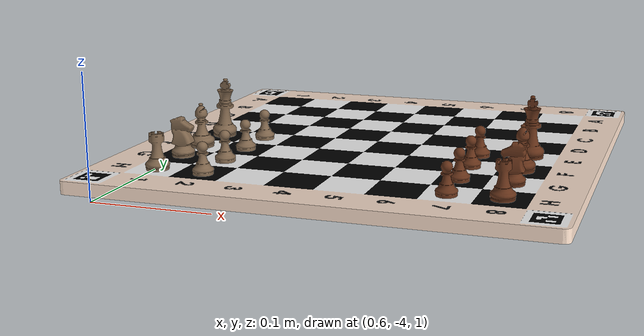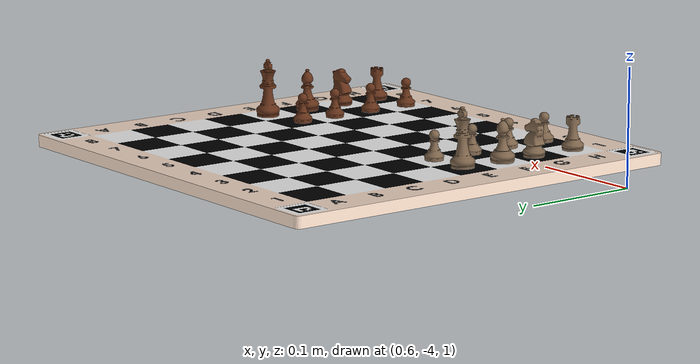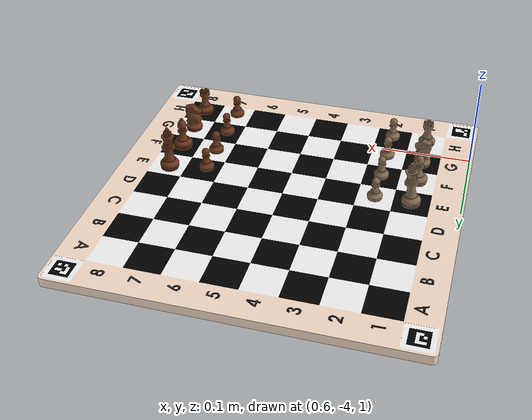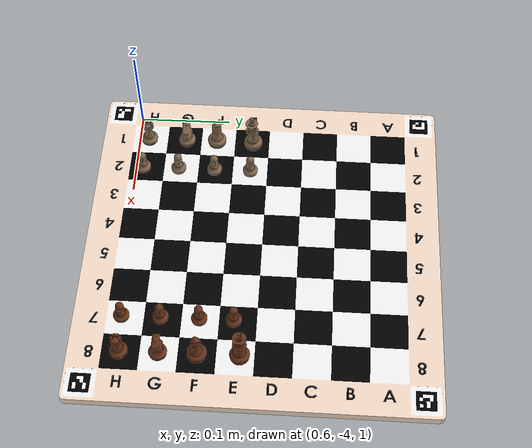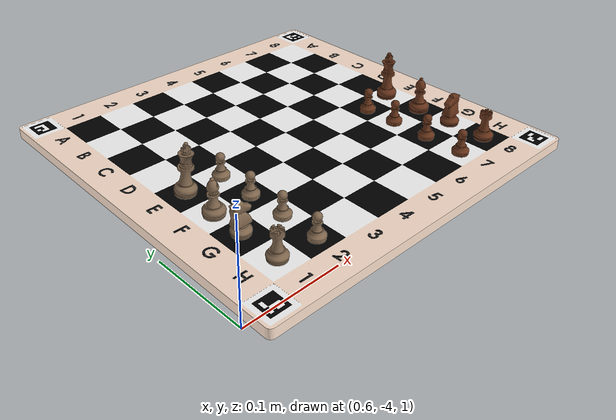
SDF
<sdf version="1.7">
 <world name="default">
  <model name="ground_plane">
   <static>1</static>
   <link name="link">
    <collision name="collision">
     <geometry><plane><normal>0 0 1</normal><size>100 100</size></plane></geometry>
     <surface>
      <contact><collide_bitmask>65535</collide_bitmask></contact>
      <friction><ode><mu>100</mu><mu2>50</mu2></ode></friction>
     </surface>
    </collision>
    <visual name="visual">
     <cast_shadows>0</cast_shadows>
     <geometry><plane><normal>0 0 1</normal><size>100 100</size></plane></geometry>
     <material>
      <script><uri>file://media/materials/scripts/gazebo.material</uri><name>Gazebo/Grey</name></script>
     </material>
    </visual>
   </link>
  </model>
  <model name="chessboard">
   <static>1</static>
   <link name="link_0">
    <inertial>
     <mass>1</mass>
     <inertia>
      <ixx>0.166667</ixx>
      <ixy>0</ixy>
      <ixz>0</ixz>
      <iyy>0.166667</iyy>
      <iyz>0</iyz>
      <izz>0.166667</izz>
     </inertia>
    </inertial>
    <visual name="visual">
     <geometry><mesh><uri>model://chessboard/meshes/chessboard.dae</uri><scale>1 1 1</scale></mesh></geometry>
    </visual>
    <collision name="collision">
     <pose>0 0 0.005 0 -0 0</pose>
     <geometry><box><size>0.368 0.368 0.01</size></box></geometry>
     <surface>
      <friction><ode><mu>1</mu><mu2>1</mu2></ode></friction>
      <contact><ode><kp>1e+07</kp><kd>1</kd><max_vel>0.001</max_vel><min_depth>0.1</min_depth></ode></contact>
     </surface>
    </collision>
   </link>
   <pose>0.781691 -3.85293 1.01612 0 -0 3.13138</pose>
  </model>
  <model name="king_white">
   <static>0</static>
   <link name="link_0">
    <inertial>
     <mass>0.1</mass>
     <inertia><ixx>1e-06</ixx><ixy>0</ixy><ixz>0</ixz><iyy>1e-06</iyy><iyz>0</iyz><izz>5e-07</izz></inertia>
    </inertial>
    <visual name="visual">
     <geometry><mesh><uri>model://king_white/meshes/king.dae</uri><scale>1 1 1</scale></mesh></geometry>
     <material>
      <lighting>1</lighting>
      <script><uri>file://media/materials/scripts/gazebo.material</uri><name>Gazebo/Grey</name></script>
      <shader type="vertex"><normal_map>__default__</normal_map></shader>
      <ambient>1 0.894 0.71 1</ambient>
      <diffuse>0.5 0.4 0.3 1</diffuse>
      <specular>0.01 0.01 0.01 1</specular>
      <emissive>0 0 0 1</emissive>
     </material>
    </visual>
    <collision name="collision">
     <pose>0 0 0.005 0 -0 0</pose>
     <geometry><box><size>0.02 0.02 0.01</size></box></geometry>
     <surface>
      <friction>
       <ode><mu>1</mu><mu2>1</mu2><fdir1>0 0 0</fdir1><slip1>0</slip1><slip2>0</slip2></ode>
       <torsional>
        <coefficient>1</coefficient>
        <patch_radius>0</patch_radius>
        <surface_radius>0</surface_radius>
        <use_patch_radius>1</use_patch_radius>
        <ode><slip>0</slip></ode>
       </torsional>
      </friction>
      <bounce><restitution_coefficient>0</restitution_coefficient><threshold>1e+06</threshold></bounce>
      <contact>
       <collide_without_contact>0</collide_without_contact>
       <collide_without_contact_bitmask>1</collide_without_contact_bitmask>
       <collide_bitmask>1</collide_bitmask>
       <ode>
        <soft_cfm>0.1</soft_cfm>
        <soft_erp>0.2</soft_erp>
        <kp>1e+13</kp>
        <kd>1</kd>
        <max_vel>0.01</max_vel>
        <min_depth>0</min_depth>
       </ode>
      </contact>
     </surface>
    </collision>
   </link>
   <static>0</static>
   <pose>0.650924 -3.86927 1.02638 0.031884 0.061759 -0.010427</pose>
  </model>
  <model name="bishop_white_clone_0">
   <static>0</static>
   <link name="link_0">
    <inertial>
     <mass>0.01</mass>
     <inertia><ixx>1e-06</ixx><ixy>0</ixy><ixz>0</ixz><iyy>1e-06</iyy><iyz>0</iyz><izz>5e-07</izz></inertia>
    </inertial>
    <visual name="visual">
     <geometry><mesh><uri>model://bishop_white/meshes/bishop.dae</uri><scale>1 1 1</scale></mesh></geometry>
     <material>
      <lighting>1</lighting>
      <script><uri>file://media/materials/scripts/gazebo.material</uri><name>Gazebo/Grey</name></script>
      <shader type="vertex"><normal_map>__default__</normal_map></shader>
      <ambient>1 0.894 0.71 1</ambient>
      <diffuse>0.5 0.4 0.3 1</diffuse>
      <specular>0.01 0.01 0.01 1</specular>
      <emissive>0 0 0 1</emissive>
     </material>
    </visual>
    <collision name="collision">
     <pose>0 0 0.005 0 -0 0</pose>
     <geometry><box><size>0.02 0.02 0.01</size></box></geometry>
     <surface>
      <friction>
       <ode><mu>1</mu><mu2>1</mu2><fdir1>0 0 0</fdir1><slip1>0</slip1><slip2>0</slip2></ode>
       <torsional>
        <coefficient>1</coefficient>
        <patch_radius>0</patch_radius>
        <surface_radius>0</surface_radius>
        <use_patch_radius>1</use_patch_radius>
        <ode><slip>0</slip></ode>
       </torsional>
      </friction>
      <bounce><restitution_coefficient>0</restitution_coefficient><threshold>1e+06</threshold></bounce>
      <contact>
       <collide_without_contact>0</collide_without_contact>
       <collide_without_contact_bitmask>1</collide_without_contact_bitmask>
       <collide_bitmask>1</collide_bitmask>
       <ode>
        <soft_cfm>0</soft_cfm>
        <soft_erp>0.2</soft_erp>
        <kp>1e+13</kp>
        <kd>1</kd>
        <max_vel>0.01</max_vel>
        <min_depth>0</min_depth>
       </ode>
       <bullet>
        <split_impulse>1</split_impulse>
        <split_impulse_penetration_threshold>-0.01</split_impulse_penetration_threshold>
        <soft_cfm>0</soft_cfm>
        <soft_erp>0.2</soft_erp>
        <kp>1e+13</kp>
        <kd>1</kd>
       </bullet>
      </contact>
     </surface>
    </collision>
   </link>
   <static>0</static>
   <pose>0.64959 -3.90934 1.02612 0 0 0</pose>
  </model>
  <model name="knight_white">
   <static>0</static>
   <link name="link_0">
    <inertial>
     <mass>0.01</mass>
     <inertia><ixx>1e-06</ixx><ixy>0</ixy><ixz>0</ixz><iyy>1e-06</iyy><iyz>0</iyz><izz>5e-07</izz></inertia>
    </inertial>
    <visual name="visual">
     <geometry><mesh><uri>model://knight_white/meshes/knight.dae</uri><scale>1 1 1</scale></mesh></geometry>
     <material>
      <lighting>1</lighting>
      <script><uri>file://media/materials/scripts/gazebo.material</uri><name>Gazebo/Grey</name></script>
      <shader type="vertex"><normal_map>__default__</normal_map></shader>
      <ambient>1 0.894 0.71 1</ambient>
      <diffuse>0.5 0.4 0.3 1</diffuse>
      <specular>0.01 0.01 0.01 1</specular>
      <emissive>0 0 0 1</emissive>
     </material>
    </visual>
    <collision name="collision">
     <pose>0 0 0.005 0 -0 0</pose>
     <geometry><box><size>0.018 0.018 0.01</size></box></geometry>
     <surface>
      <friction>
       <ode><mu>1</mu><mu2>1</mu2><fdir1>0 0 0</fdir1><slip1>0</slip1><slip2>0</slip2></ode>
       <torsional>
        <coefficient>1</coefficient>
        <patch_radius>0</patch_radius>
        <surface_radius>0</surface_radius>
        <use_patch_radius>1</use_patch_radius>
        <ode><slip>0</slip></ode>
       </torsional>
      </friction>
      <bounce><restitution_coefficient>0</restitution_coefficient><threshold>1e+06</threshold></bounce>
      <contact>
       <collide_without_contact>0</collide_without_contact>
       <collide_without_contact_bitmask>1</collide_without_contact_bitmask>
       <collide_bitmask>1</collide_bitmask>
       <ode>
        <soft_cfm>0</soft_cfm>
        <soft_erp>0.2</soft_erp>
        <kp>1e+13</kp>
        <kd>1</kd>
        <max_vel>0.01</max_vel>
        <min_depth>0</min_depth>
       </ode>
       <bullet>
        <split_impulse>1</split_impulse>
        <split_impulse_penetration_threshold>-0.01</split_impulse_penetration_threshold>
        <soft_cfm>0</soft_cfm>
        <soft_erp>0.2</soft_erp>
        <kp>1e+13</kp>
        <kd>1</kd>
       </bullet>
      </contact>
     </surface>
    </collision>
   </link>
   <static>0</static>
   <pose>0.64969 -3.94259 1.02612 0 0 1.57236</pose>
  </model>
  <model name="rook_white_clone">
   <static>0</static>
   <link name="link_0">
    <inertial>
     <mass>0.01</mass>
     <inertia><ixx>1e-06</ixx><ixy>0</ixy><ixz>0</ixz><iyy>1e-06</iyy><iyz>0</iyz><izz>5e-07</izz></inertia>
    </inertial>
    <visual name="visual">
     <geometry><mesh><uri>model://rook_white/meshes/rook.dae</uri><scale>1 1 1</scale></mesh></geometry>
     <material>
      <lighting>1</lighting>
      <script><uri>file://media/materials/scripts/gazebo.material</uri><name>Gazebo/Grey</name></script>
      <shader type="vertex"><normal_map>__default__</normal_map></shader>
      <ambient>1 0.894 0.71 1</ambient>
      <diffuse>0.5 0.4 0.3 1</diffuse>
      <specular>0.01 0.01 0.01 1</specular>
      <emissive>0 0 0 1</emissive>
     </material>
    </visual>
    <collision name="collision">
     <pose>0 0 0.005 0 -0 0</pose>
     <geometry><box><size>0.018 0.018 0.01</size></box></geometry>
     <surface>
      <friction>
       <ode><mu>1</mu><mu2>1</mu2><fdir1>0 0 0</fdir1><slip1>0</slip1><slip2>0</slip2></ode>
       <torsional>
        <coefficient>1</coefficient>
        <patch_radius>0</patch_radius>
        <surface_radius>0</surface_radius>
        <use_patch_radius>1</use_patch_radius>
        <ode><slip>0</slip></ode>
       </torsional>
      </friction>
      <bounce><restitution_coefficient>0</restitution_coefficient><threshold>1e+06</threshold></bounce>
      <contact>
       <collide_without_contact>0</collide_without_contact>
       <collide_without_contact_bitmask>1</collide_without_contact_bitmask>
       <collide_bitmask>1</collide_bitmask>
       <ode>
        <soft_cfm>0</soft_cfm>
        <soft_erp>0.2</soft_erp>
        <kp>1e+13</kp>
        <kd>1</kd>
        <max_vel>0.01</max_vel>
        <min_depth>0</min_depth>
       </ode>
       <bullet>
        <split_impulse>1</split_impulse>
        <split_impulse_penetration_threshold>-0.01</split_impulse_penetration_threshold>
        <soft_cfm>0</soft_cfm>
        <soft_erp>0.2</soft_erp>
        <kp>1e+13</kp>
        <kd>1</kd>
       </bullet>
      </contact>
     </surface>
    </collision>
   </link>
   <static>0</static>
   <pose>0.64949 -3.98428 1.02612 0 0 0</pose>
  </model>
  <model name="pawn_white_clone_0">
   <static>0</static>
   <link name="link_0">
    <inertial>
     <mass>0.01</mass>
     <inertia><ixx>1e-06</ixx><ixy>0</ixy><ixz>0</ixz><iyy>1e-06</iyy><iyz>0</iyz><izz>5e-07</izz></inertia>
    </inertial>
    <visual name="visual">
     <geometry><mesh><uri>model://pawn_white/meshes/pawn.dae</uri><scale>1 1 1</scale></mesh></geometry>
     <material>
      <lighting>1</lighting>
      <script><uri>file://media/materials/scripts/gazebo.material</uri><name>Gazebo/Grey</name></script>
      <shader type="vertex"><normal_map>__default__</normal_map></shader>
      <ambient>1 0.894 0.71 1</ambient>
      <diffuse>0.5 0.4 0.3 1</diffuse>
      <specular>0.01 0.01 0.01 1</specular>
      <emissive>0 0 0 1</emissive>
     </material>
    </visual>
    <collision name="collision">
     <pose>0 0 0.005 0 -0 0</pose>
     <geometry><box><size>0.016 0.016 0.01</size></box></geometry>
     <surface>
      <friction>
       <ode><mu>1</mu><mu2>1</mu2><fdir1>0 0 0</fdir1><slip1>0</slip1><slip2>0</slip2></ode>
       <torsional>
        <coefficient>1</coefficient>
        <patch_radius>0</patch_radius>
        <surface_radius>0</surface_radius>
        <use_patch_radius>1</use_patch_radius>
        <ode><slip>0</slip></ode>
       </torsional>
      </friction>
      <bounce><restitution_coefficient>0</restitution_coefficient><threshold>1e+06</threshold></bounce>
      <contact>
       <collide_without_contact>0</collide_without_contact>
       <collide_without_contact_bitmask>1</collide_without_contact_bitmask>
       <collide_bitmask>1</collide_bitmask>
       <ode>
        <soft_cfm>0</soft_cfm>
        <soft_erp>0.2</soft_erp>
        <kp>1e+13</kp>
        <kd>1</kd>
        <max_vel>0.01</max_vel>
        <min_depth>0</min_depth>
       </ode>
       <bullet>
        <split_impulse>1</split_impulse>
        <split_impulse_penetration_threshold>-0.01</split_impulse_penetration_threshold>
        <soft_cfm>0</soft_cfm>
        <soft_erp>0.2</soft_erp>
        <kp>1e+13</kp>
        <kd>1</kd>
       </bullet>
      </contact>
     </surface>
    </collision>
   </link>
   <static>0</static>
   <pose>0.688245 -3.98716 1.02612 0 0 0</pose>
  </model>
  <model name="pawn_white_clone_1">
   <static>0</static>
   <link name="link_0">
    <inertial>
     <mass>0.01</mass>
     <inertia><ixx>1e-06</ixx><ixy>0</ixy><ixz>0</ixz><iyy>1e-06</iyy><iyz>0</iyz><izz>5e-07</izz></inertia>
    </inertial>
    <visual name="visual">
     <geometry><mesh><uri>model://pawn_white/meshes/pawn.dae</uri><scale>1 1 1</scale></mesh></geometry>
     <material>
      <lighting>1</lighting>
      <script><uri>file://media/materials/scripts/gazebo.material</uri><name>Gazebo/Grey</name></script>
      <shader type="vertex"><normal_map>__default__</normal_map></shader>
      <ambient>1 0.894 0.71 1</ambient>
      <diffuse>0.5 0.4 0.3 1</diffuse>
      <specular>0.01 0.01 0.01 1</specular>
      <emissive>0 0 0 1</emissive>
     </material>
    </visual>
    <collision name="collision">
     <pose>0 0 0.005 0 -0 0</pose>
     <geometry><box><size>0.016 0.016 0.01</size></box></geometry>
     <surface>
      <friction>
       <ode><mu>1</mu><mu2>1</mu2><fdir1>0 0 0</fdir1><slip1>0</slip1><slip2>0</slip2></ode>
       <torsional>
        <coefficient>1</coefficient>
        <patch_radius>0</patch_radius>
        <surface_radius>0</surface_radius>
        <use_patch_radius>1</use_patch_radius>
        <ode><slip>0</slip></ode>
       </torsional>
      </friction>
      <bounce><restitution_coefficient>0</restitution_coefficient><threshold>1e+06</threshold></bounce>
      <contact>
       <collide_without_contact>0</collide_without_contact>
       <collide_without_contact_bitmask>1</collide_without_contact_bitmask>
       <collide_bitmask>1</collide_bitmask>
       <ode>
        <soft_cfm>0</soft_cfm>
        <soft_erp>0.2</soft_erp>
        <kp>1e+13</kp>
        <kd>1</kd>
        <max_vel>0.01</max_vel>
        <min_depth>0</min_depth>
       </ode>
       <bullet>
        <split_impulse>1</split_impulse>
        <split_impulse_penetration_threshold>-0.01</split_impulse_penetration_threshold>
        <soft_cfm>0</soft_cfm>
        <soft_erp>0.2</soft_erp>
        <kp>1e+13</kp>
        <kd>1</kd>
       </bullet>
      </contact>
     </surface>
    </collision>
   </link>
   <static>0</static>
   <pose>0.688245 -3.94848 1.02612 0 0 0</pose>
  </model>
  <model name="pawn_white_clone_2">
   <static>0</static>
   <link name="link_0">
    <inertial>
     <mass>0.01</mass>
     <inertia><ixx>1e-06</ixx><ixy>0</ixy><ixz>0</ixz><iyy>1e-06</iyy><iyz>0</iyz><izz>5e-07</izz></inertia>
    </inertial>
    <visual name="visual">
     <geometry><mesh><uri>model://pawn_white/meshes/pawn.dae</uri><scale>1 1 1</scale></mesh></geometry>
     <material>
      <lighting>1</lighting>
      <script><uri>file://media/materials/scripts/gazebo.material</uri><name>Gazebo/Grey</name></script>
      <shader type="vertex"><normal_map>__default__</normal_map></shader>
      <ambient>1 0.894 0.71 1</ambient>
      <diffuse>0.5 0.4 0.3 1</diffuse>
      <specular>0.01 0.01 0.01 1</specular>
      <emissive>0 0 0 1</emissive>
     </material>
    </visual>
    <collision name="collision">
     <pose>0 0 0.005 0 -0 0</pose>
     <geometry><box><size>0.016 0.016 0.01</size></box></geometry>
     <surface>
      <friction>
       <ode><mu>1</mu><mu2>1</mu2><fdir1>0 0 0</fdir1><slip1>0</slip1><slip2>0</slip2></ode>
       <torsional>
        <coefficient>1</coefficient>
        <patch_radius>0</patch_radius>
        <surface_radius>0</surface_radius>
        <use_patch_radius>1</use_patch_radius>
        <ode><slip>0</slip></ode>
       </torsional>
      </friction>
      <bounce><restitution_coefficient>0</restitution_coefficient><threshold>1e+06</threshold></bounce>
      <contact>
       <collide_without_contact>0</collide_without_contact>
       <collide_without_contact_bitmask>1</collide_without_contact_bitmask>
       <collide_bitmask>1</collide_bitmask>
       <ode>
        <soft_cfm>0</soft_cfm>
        <soft_erp>0.2</soft_erp>
        <kp>1e+13</kp>
        <kd>1</kd>
        <max_vel>0.01</max_vel>
        <min_depth>0</min_depth>
       </ode>
       <bullet>
        <split_impulse>1</split_impulse>
        <split_impulse_penetration_threshold>-0.01</split_impulse_penetration_threshold>
        <soft_cfm>0</soft_cfm>
        <soft_erp>0.2</soft_erp>
        <kp>1e+13</kp>
        <kd>1</kd>
       </bullet>
      </contact>
     </surface>
    </collision>
   </link>
   <static>0</static>
   <pose>0.688245 -3.9097 1.02612 0 0 0</pose>
  </model>
  <model name="pawn_white_clone_3">
   <static>0</static>
   <link name="link_0">
    <inertial>
     <mass>0.01</mass>
     <inertia><ixx>1e-06</ixx><ixy>0</ixy><ixz>0</ixz><iyy>1e-06</iyy><iyz>0</iyz><izz>5e-07</izz></inertia>
    </inertial>
    <visual name="visual">
     <geometry><mesh><uri>model://pawn_white/meshes/pawn.dae</uri><scale>1 1 1</scale></mesh></geometry>
     <material>
      <lighting>1</lighting>
      <script><uri>file://media/materials/scripts/gazebo.material</uri><name>Gazebo/Grey</name></script>
      <shader type="vertex"><normal_map>__default__</normal_map></shader>
      <ambient>1 0.894 0.71 1</ambient>
      <diffuse>0.5 0.4 0.3 1</diffuse>
      <specular>0.01 0.01 0.01 1</specular>
      <emissive>0 0 0 1</emissive>
     </material>
    </visual>
    <collision name="collision">
     <pose>0 0 0.005 0 -0 0</pose>
     <geometry><box><size>0.016 0.016 0.01</size></box></geometry>
     <surface>
      <friction>
       <ode><mu>1</mu><mu2>1</mu2><fdir1>0 0 0</fdir1><slip1>0</slip1><slip2>0</slip2></ode>
       <torsional>
        <coefficient>1</coefficient>
        <patch_radius>0</patch_radius>
        <surface_radius>0</surface_radius>
        <use_patch_radius>1</use_patch_radius>
        <ode><slip>0</slip></ode>
       </torsional>
      </friction>
      <bounce><restitution_coefficient>0</restitution_coefficient><threshold>1e+06</threshold></bounce>
      <contact>
       <collide_without_contact>0</collide_without_contact>
       <collide_without_contact_bitmask>1</collide_without_contact_bitmask>
       <collide_bitmask>1</collide_bitmask>
       <ode>
        <soft_cfm>0</soft_cfm>
        <soft_erp>0.2</soft_erp>
        <kp>1e+13</kp>
        <kd>1</kd>
        <max_vel>0.01</max_vel>
        <min_depth>0</min_depth>
       </ode>
       <bullet>
        <split_impulse>1</split_impulse>
        <split_impulse_penetration_threshold>-0.01</split_impulse_penetration_threshold>
        <soft_cfm>0</soft_cfm>
        <soft_erp>0.2</soft_erp>
        <kp>1e+13</kp>
        <kd>1</kd>
       </bullet>
      </contact>
     </surface>
    </collision>
   </link>
   <static>0</static>
   <pose>0.688245 -3.8705 1.02612 0 0 -0</pose>
  </model>
  <model name="king_black">
   <static>0</static>
   <link name="link_0">
    <inertial>
     <mass>0.1</mass>
     <inertia><ixx>1e-06</ixx><ixy>0</ixy><ixz>0</ixz><iyy>1e-06</iyy><iyz>0</iyz><izz>5e-07</izz></inertia>
    </inertial>
    <visual name="visual">
     <geometry><mesh><uri>model://king_black/meshes/king.dae</uri><scale>1 1 1</scale></mesh></geometry>
     <material>
      <lighting>1</lighting>
      <script><uri>file://media/materials/scripts/gazebo.material</uri><name>Gazebo/Grey</name></script>
      <shader type="vertex"><normal_map>__default__</normal_map></shader>
      <ambient>0.62 0.31 0.12 1</ambient>
      <diffuse>0.4 0.2 0.1 1</diffuse>
      <specular>0.01 0.01 0.01 1</specular>
      <emissive>0 0 0 1</emissive>
     </material>
    </visual>
    <collision name="collision">
     <pose>0 0 0.005 0 -0 0</pose>
     <geometry><box><size>0.02 0.02 0.01</size></box></geometry>
     <surface>
      <friction>
       <ode><mu>1</mu><mu2>1</mu2><fdir1>0 0 0</fdir1><slip1>0</slip1><slip2>0</slip2></ode>
       <torsional>
        <coefficient>1</coefficient>
        <patch_radius>0</patch_radius>
        <surface_radius>0</surface_radius>
        <use_patch_radius>1</use_patch_radius>
        <ode><slip>0</slip></ode>
       </torsional>
      </friction>
      <bounce><restitution_coefficient>0</restitution_coefficient><threshold>1e+06</threshold></bounce>
      <contact>
       <collide_without_contact>0</collide_without_contact>
       <collide_without_contact_bitmask>1</collide_without_contact_bitmask>
       <collide_bitmask>1</collide_bitmask>
       <ode>
        <soft_cfm>0.1</soft_cfm>
        <soft_erp>0.2</soft_erp>
        <kp>1e+13</kp>
        <kd>1</kd>
        <max_vel>0.01</max_vel>
        <min_depth>0</min_depth>
       </ode>
      </contact>
     </surface>
    </collision>
   </link>
   <static>0</static>
   <pose>0.911171 -3.86874 1.02612 0 0 -0</pose>
  </model>
  <model name="bishop_black_clone">
   <static>0</static>
   <link name="link_0">
    <inertial>
     <mass>0.01</mass>
     <inertia><ixx>1e-06</ixx><ixy>0</ixy><ixz>0</ixz><iyy>1e-06</iyy><iyz>0</iyz><izz>5e-07</izz></inertia>
    </inertial>
    <visual name="visual">
     <geometry><mesh><uri>model://bishop_black/meshes/bishop.dae</uri><scale>1 1 1</scale></mesh></geometry>
     <material>
      <lighting>1</lighting>
      <script><uri>file://media/materials/scripts/gazebo.material</uri><name>Gazebo/Grey</name></script>
      <shader type="vertex"><normal_map>__default__</normal_map></shader>
      <ambient>0.62 0.31 0.12 1</ambient>
      <diffuse>0.4 0.2 0.1 1</diffuse>
      <specular>0.01 0.01 0.01 1</specular>
      <emissive>0 0 0 1</emissive>
     </material>
    </visual>
    <collision name="collision">
     <pose>0 0 0.005 0 -0 0</pose>
     <geometry><box><size>0.02 0.02 0.01</size></box></geometry>
     <surface>
      <friction>
       <ode><mu>1</mu><mu2>1</mu2><fdir1>0 0 0</fdir1><slip1>0</slip1><slip2>0</slip2></ode>
       <torsional>
        <coefficient>1</coefficient>
        <patch_radius>0</patch_radius>
        <surface_radius>0</surface_radius>
        <use_patch_radius>1</use_patch_radius>
        <ode><slip>0</slip></ode>
       </torsional>
      </friction>
      <bounce><restitution_coefficient>0</restitution_coefficient><threshold>1e+06</threshold></bounce>
      <contact>
       <collide_without_contact>0</collide_without_contact>
       <collide_without_contact_bitmask>1</collide_without_contact_bitmask>
       <collide_bitmask>1</collide_bitmask>
       <ode>
        <soft_cfm>0</soft_cfm>
        <soft_erp>0.2</soft_erp>
        <kp>1e+13</kp>
        <kd>1</kd>
        <max_vel>0.01</max_vel>
        <min_depth>0</min_depth>
       </ode>
       <bullet>
        <split_impulse>1</split_impulse>
        <split_impulse_penetration_threshold>-0.01</split_impulse_penetration_threshold>
        <soft_cfm>0</soft_cfm>
        <soft_erp>0.2</soft_erp>
        <kp>1e+13</kp>
        <kd>1</kd>
       </bullet>
      </contact>
     </surface>
    </collision>
   </link>
   <static>0</static>
   <pose>0.911171 -3.91086 1.02612 0 0 0</pose>
  </model>
  <model name="knight_black_clone">
   <static>0</static>
   <link name="link_0">
    <inertial>
     <mass>0.01</mass>
     <inertia><ixx>1e-06</ixx><ixy>0</ixy><ixz>0</ixz><iyy>1e-06</iyy><iyz>0</iyz><izz>5e-07</izz></inertia>
    </inertial>
    <visual name="visual">
     <geometry><mesh><uri>model://knight_black/meshes/knight.dae</uri><scale>1 1 1</scale></mesh></geometry>
     <material>
      <lighting>1</lighting>
      <script><uri>file://media/materials/scripts/gazebo.material</uri><name>Gazebo/Grey</name></script>
      <shader type="vertex"><normal_map>__default__</normal_map></shader>
      <ambient>0.62 0.31 0.12 1</ambient>
      <diffuse>0.4 0.2 0.1 1</diffuse>
      <specular>0.01 0.01 0.01 1</specular>
      <emissive>0 0 0 1</emissive>
     </material>
    </visual>
    <collision name="collision">
     <pose>0 0 0.005 0 -0 0</pose>
     <geometry><box><size>0.018 0.018 0.01</size></box></geometry>
     <surface>
      <friction>
       <ode><mu>1</mu><mu2>1</mu2><fdir1>0 0 0</fdir1><slip1>0</slip1><slip2>0</slip2></ode>
       <torsional>
        <coefficient>1</coefficient>
        <patch_radius>0</patch_radius>
        <surface_radius>0</surface_radius>
        <use_patch_radius>1</use_patch_radius>
        <ode><slip>0</slip></ode>
       </torsional>
      </friction>
      <bounce><restitution_coefficient>0</restitution_coefficient><threshold>1e+06</threshold></bounce>
      <contact>
       <collide_without_contact>0</collide_without_contact>
       <collide_without_contact_bitmask>1</collide_without_contact_bitmask>
       <collide_bitmask>1</collide_bitmask>
       <ode>
        <soft_cfm>0</soft_cfm>
        <soft_erp>0.2</soft_erp>
        <kp>1e+13</kp>
        <kd>1</kd>
        <max_vel>0.01</max_vel>
        <min_depth>0</min_depth>
       </ode>
       <bullet>
        <split_impulse>1</split_impulse>
        <split_impulse_penetration_threshold>-0.01</split_impulse_penetration_threshold>
        <soft_cfm>0</soft_cfm>
        <soft_erp>0.2</soft_erp>
        <kp>1e+13</kp>
        <kd>1</kd>
       </bullet>
      </contact>
     </surface>
    </collision>
   </link>
   <static>0</static>
   <pose>0.911078 -3.94873 1.02612 0 0 -1.49951</pose>
  </model>
  <model name="rook_black_clone">
   <static>0</static>
   <link name="link_0">
    <inertial>
     <mass>0.01</mass>
     <inertia><ixx>1e-06</ixx><ixy>0</ixy><ixz>0</ixz><iyy>1e-06</iyy><iyz>0</iyz><izz>5e-07</izz></inertia>
    </inertial>
    <visual name="visual">
     <geometry><mesh><uri>model://rook_black/meshes/rook.dae</uri><scale>1 1 1</scale></mesh></geometry>
     <material>
      <lighting>1</lighting>
      <script><uri>file://media/materials/scripts/gazebo.material</uri><name>Gazebo/Grey</name></script>
      <shader type="vertex"><normal_map>__default__</normal_map></shader>
      <ambient>0.62 0.31 0.12 1</ambient>
      <diffuse>0.4 0.2 0.1 1</diffuse>
      <specular>0.01 0.01 0.01 1</specular>
      <emissive>0 0 0 1</emissive>
     </material>
    </visual>
    <collision name="collision">
     <pose>0 0 0.005 0 -0 0</pose>
     <geometry><box><size>0.018 0.018 0.01</size></box></geometry>
     <surface>
      <friction>
       <ode><mu>1</mu><mu2>1</mu2><fdir1>0 0 0</fdir1><slip1>0</slip1><slip2>0</slip2></ode>
       <torsional>
        <coefficient>1</coefficient>
        <patch_radius>0</patch_radius>
        <surface_radius>0</surface_radius>
        <use_patch_radius>1</use_patch_radius>
        <ode><slip>0</slip></ode>
       </torsional>
      </friction>
      <bounce><restitution_coefficient>0</restitution_coefficient><threshold>1e+06</threshold></bounce>
      <contact>
       <collide_without_contact>0</collide_without_contact>
       <collide_without_contact_bitmask>1</collide_without_contact_bitmask>
       <collide_bitmask>1</collide_bitmask>
       <ode>
        <soft_cfm>0</soft_cfm>
        <soft_erp>0.2</soft_erp>
        <kp>1e+13</kp>
        <kd>1</kd>
        <max_vel>0.01</max_vel>
        <min_depth>0</min_depth>
       </ode>
       <bullet>
        <split_impulse>1</split_impulse>
        <split_impulse_penetration_threshold>-0.01</split_impulse_penetration_threshold>
        <soft_cfm>0</soft_cfm>
        <soft_erp>0.2</soft_erp>
        <kp>1e+13</kp>
        <kd>1</kd>
       </bullet>
      </contact>
     </surface>
    </collision>
   </link>
   <static>0</static>
   <pose>0.911072 -3.98717 1.02612 0 0 -0</pose>
  </model>
  <model name="pawn_black_clone_2">
   <static>0</static>
   <link name="link_0">
    <inertial>
     <mass>0.01</mass>
     <inertia><ixx>1e-06</ixx><ixy>0</ixy><ixz>0</ixz><iyy>1e-06</iyy><iyz>0</iyz><izz>5e-07</izz></inertia>
    </inertial>
    <visual name="visual">
     <geometry><mesh><uri>model://pawn_black/meshes/pawn.dae</uri><scale>1 1 1</scale></mesh></geometry>
     <material>
      <lighting>1</lighting>
      <script><uri>file://media/materials/scripts/gazebo.material</uri><name>Gazebo/Grey</name></script>
      <shader type="vertex"><normal_map>__default__</normal_map></shader>
      <ambient>0.62 0.31 0.12 1</ambient>
      <diffuse>0.4 0.2 0.1 1</diffuse>
      <specular>0.01 0.01 0.01 1</specular>
      <emissive>0 0 0 1</emissive>
     </material>
    </visual>
    <collision name="collision">
     <pose>0 0 0.005 0 -0 0</pose>
     <geometry><box><size>0.016 0.016 0.01</size></box></geometry>
     <surface>
      <friction>
       <ode><mu>1</mu><mu2>1</mu2><fdir1>0 0 0</fdir1><slip1>0</slip1><slip2>0</slip2></ode>
       <torsional>
        <coefficient>1</coefficient>
        <patch_radius>0</patch_radius>
        <surface_radius>0</surface_radius>
        <use_patch_radius>1</use_patch_radius>
        <ode><slip>0</slip></ode>
       </torsional>
      </friction>
      <bounce><restitution_coefficient>0</restitution_coefficient><threshold>1e+06</threshold></bounce>
      <contact>
       <collide_without_contact>0</collide_without_contact>
       <collide_without_contact_bitmask>1</collide_without_contact_bitmask>
       <collide_bitmask>1</collide_bitmask>
       <ode>
        <soft_cfm>0</soft_cfm>
        <soft_erp>0.2</soft_erp>
        <kp>1e+13</kp>
        <kd>1</kd>
        <max_vel>0.01</max_vel>
        <min_depth>0</min_depth>
       </ode>
       <bullet>
        <split_impulse>1</split_impulse>
        <split_impulse_penetration_threshold>-0.01</split_impulse_penetration_threshold>
        <soft_cfm>0</soft_cfm>
        <soft_erp>0.2</soft_erp>
        <kp>1e+13</kp>
        <kd>1</kd>
       </bullet>
      </contact>
     </surface>
    </collision>
   </link>
   <static>0</static>
   <pose>0.872379 -3.87693 1.02612 0 0 -0</pose>
  </model>
  <model name="pawn_black_clone_3">
   <static>0</static>
   <link name="link_0">
    <inertial>
     <mass>0.01</mass>
     <inertia><ixx>1e-06</ixx><ixy>0</ixy><ixz>0</ixz><iyy>1e-06</iyy><iyz>0</iyz><izz>5e-07</izz></inertia>
    </inertial>
    <visual name="visual">
     <geometry><mesh><uri>model://pawn_black/meshes/pawn.dae</uri><scale>1 1 1</scale></mesh></geometry>
     <material>
      <lighting>1</lighting>
      <script><uri>file://media/materials/scripts/gazebo.material</uri><name>Gazebo/Grey</name></script>
      <shader type="vertex"><normal_map>__default__</normal_map></shader>
      <ambient>0.62 0.31 0.12 1</ambient>
      <diffuse>0.4 0.2 0.1 1</diffuse>
      <specular>0.01 0.01 0.01 1</specular>
      <emissive>0 0 0 1</emissive>
     </material>
    </visual>
    <collision name="collision">
     <pose>0 0 0.005 0 -0 0</pose>
     <geometry><box><size>0.016 0.016 0.01</size></box></geometry>
     <surface>
      <friction>
       <ode><mu>1</mu><mu2>1</mu2><fdir1>0 0 0</fdir1><slip1>0</slip1><slip2>0</slip2></ode>
       <torsional>
        <coefficient>1</coefficient>
        <patch_radius>0</patch_radius>
        <surface_radius>0</surface_radius>
        <use_patch_radius>1</use_patch_radius>
        <ode><slip>0</slip></ode>
       </torsional>
      </friction>
      <bounce><restitution_coefficient>0</restitution_coefficient><threshold>1e+06</threshold></bounce>
      <contact>
       <collide_without_contact>0</collide_without_contact>
       <collide_without_contact_bitmask>1</collide_without_contact_bitmask>
       <collide_bitmask>1</collide_bitmask>
       <ode>
        <soft_cfm>0</soft_cfm>
        <soft_erp>0.2</soft_erp>
        <kp>1e+13</kp>
        <kd>1</kd>
        <max_vel>0.01</max_vel>
        <min_depth>0</min_depth>
       </ode>
       <bullet>
        <split_impulse>1</split_impulse>
        <split_impulse_penetration_threshold>-0.01</split_impulse_penetration_threshold>
        <soft_cfm>0</soft_cfm>
        <soft_erp>0.2</soft_erp>
        <kp>1e+13</kp>
        <kd>1</kd>
       </bullet>
      </contact>
     </surface>
    </collision>
   </link>
   <static>0</static>
   <pose>0.872379 -3.91116 1.02612 0 0 -0</pose>
  </model>
  <model name="pawn_black_clone_4">
   <static>0</static>
   <link name="link_0">
    <inertial>
     <mass>0.01</mass>
     <inertia><ixx>1e-06</ixx><ixy>0</ixy><ixz>0</ixz><iyy>1e-06</iyy><iyz>0</iyz><izz>5e-07</izz></inertia>
    </inertial>
    <visual name="visual">
     <geometry><mesh><uri>model://pawn_black/meshes/pawn.dae</uri><scale>1 1 1</scale></mesh></geometry>
     <material>
      <lighting>1</lighting>
      <script><uri>file://media/materials/scripts/gazebo.material</uri><name>Gazebo/Grey</name></script>
      <shader type="vertex"><normal_map>__default__</normal_map></shader>
      <ambient>0.62 0.31 0.12 1</ambient>
      <diffuse>0.4 0.2 0.1 1</diffuse>
      <specular>0.01 0.01 0.01 1</specular>
      <emissive>0 0 0 1</emissive>
     </material>
    </visual>
    <collision name="collision">
     <pose>0 0 0.005 0 -0 0</pose>
     <geometry><box><size>0.016 0.016 0.01</size></box></geometry>
     <surface>
      <friction>
       <ode><mu>1</mu><mu2>1</mu2><fdir1>0 0 0</fdir1><slip1>0</slip1><slip2>0</slip2></ode>
       <torsional>
        <coefficient>1</coefficient>
        <patch_radius>0</patch_radius>
        <surface_radius>0</surface_radius>
        <use_patch_radius>1</use_patch_radius>
        <ode><slip>0</slip></ode>
       </torsional>
      </friction>
      <bounce><restitution_coefficient>0</restitution_coefficient><threshold>1e+06</threshold></bounce>
      <contact>
       <collide_without_contact>0</collide_without_contact>
       <collide_without_contact_bitmask>1</collide_without_contact_bitmask>
       <collide_bitmask>1</collide_bitmask>
       <ode>
        <soft_cfm>0</soft_cfm>
        <soft_erp>0.2</soft_erp>
        <kp>1e+13</kp>
        <kd>1</kd>
        <max_vel>0.01</max_vel>
        <min_depth>0</min_depth>
       </ode>
       <bullet>
        <split_impulse>1</split_impulse>
        <split_impulse_penetration_threshold>-0.01</split_impulse_penetration_threshold>
        <soft_cfm>0</soft_cfm>
        <soft_erp>0.2</soft_erp>
        <kp>1e+13</kp>
        <kd>1</kd>
       </bullet>
      </contact>
     </surface>
    </collision>
   </link>
   <static>0</static>
   <pose>0.872379 -3.94991 1.02612 0 0 -0</pose>
  </model>
  <model name="pawn_black_clone_5">
   <static>0</static>
   <link name="link_0">
    <inertial>
     <mass>0.01</mass>
     <inertia><ixx>1e-06</ixx><ixy>0</ixy><ixz>0</ixz><iyy>1e-06</iyy><iyz>0</iyz><izz>5e-07</izz></inertia>
    </inertial>
    <visual name="visual">
     <geometry><mesh><uri>model://pawn_black/meshes/pawn.dae</uri><scale>1 1 1</scale></mesh></geometry>
     <material>
      <lighting>1</lighting>
      <script><uri>file://media/materials/scripts/gazebo.material</uri><name>Gazebo/Grey</name></script>
      <shader type="vertex"><normal_map>__default__</normal_map></shader>
      <ambient>0.62 0.31 0.12 1</ambient>
      <diffuse>0.4 0.2 0.1 1</diffuse>
      <specular>0.01 0.01 0.01 1</specular>
      <emissive>0 0 0 1</emissive>
     </material>
    </visual>
    <collision name="collision">
     <pose>0 0 0.005 0 -0 0</pose>
     <geometry><box><size>0.016 0.016 0.01</size></box></geometry>
     <surface>
      <friction>
       <ode><mu>1</mu><mu2>1</mu2><fdir1>0 0 0</fdir1><slip1>0</slip1><slip2>0</slip2></ode>
       <torsional>
        <coefficient>1</coefficient>
        <patch_radius>0</patch_radius>
        <surface_radius>0</surface_radius>
        <use_patch_radius>1</use_patch_radius>
        <ode><slip>0</slip></ode>
       </torsional>
      </friction>
      <bounce><restitution_coefficient>0</restitution_coefficient><threshold>1e+06</threshold></bounce>
      <contact>
       <collide_without_contact>0</collide_without_contact>
       <collide_without_contact_bitmask>1</collide_without_contact_bitmask>
       <collide_bitmask>1</collide_bitmask>
       <ode>
        <soft_cfm>0</soft_cfm>
        <soft_erp>0.2</soft_erp>
        <kp>1e+13</kp>
        <kd>1</kd>
        <max_vel>0.01</max_vel>
        <min_depth>0</min_depth>
       </ode>
       <bullet>
        <split_impulse>1</split_impulse>
        <split_impulse_penetration_threshold>-0.01</split_impulse_penetration_threshold>
        <soft_cfm>0</soft_cfm>
        <soft_erp>0.2</soft_erp>
        <kp>1e+13</kp>
        <kd>1</kd>
       </bullet>
      </contact>
     </surface>
    </collision>
   </link>
   <static>0</static>
   <pose>0.872379 -3.98897 1.02612 0 0 -0</pose>
  </model>
 </world>
</sdf>
